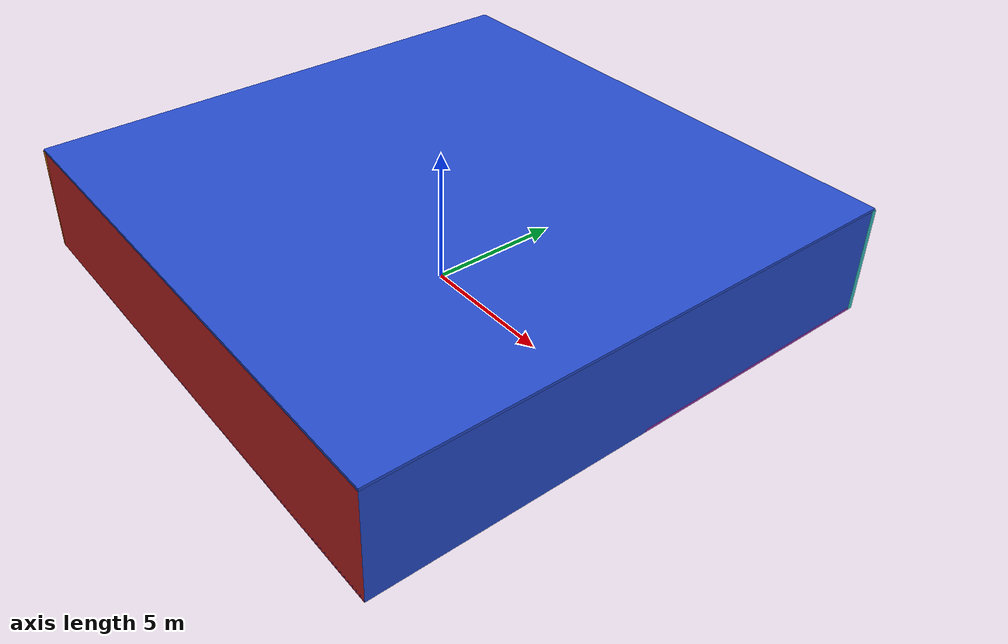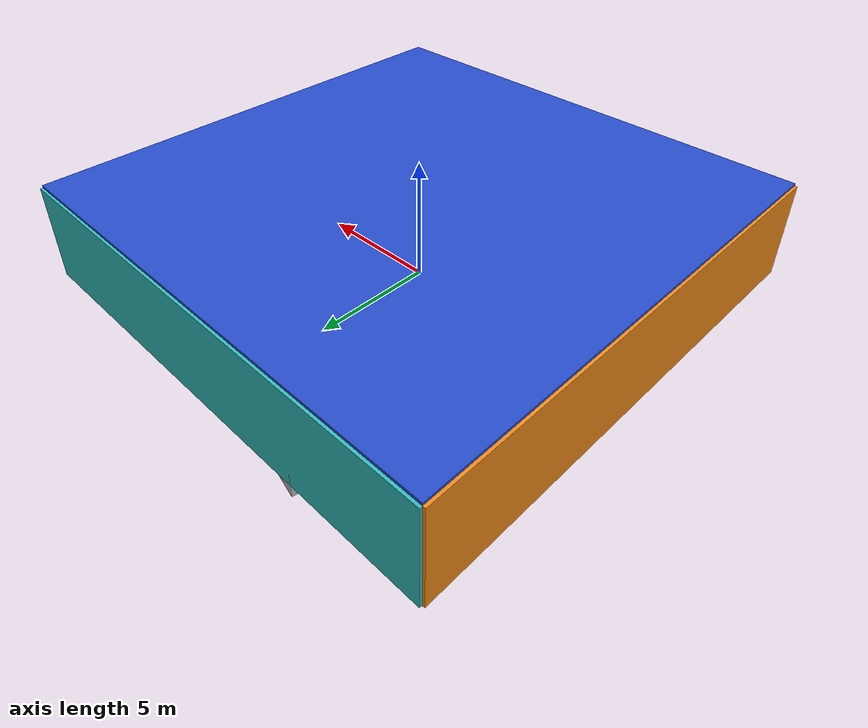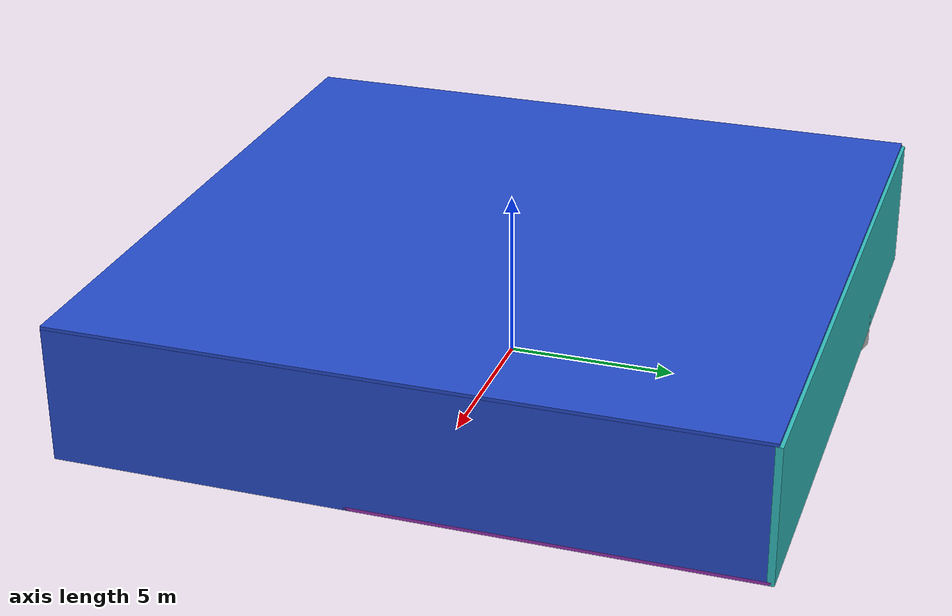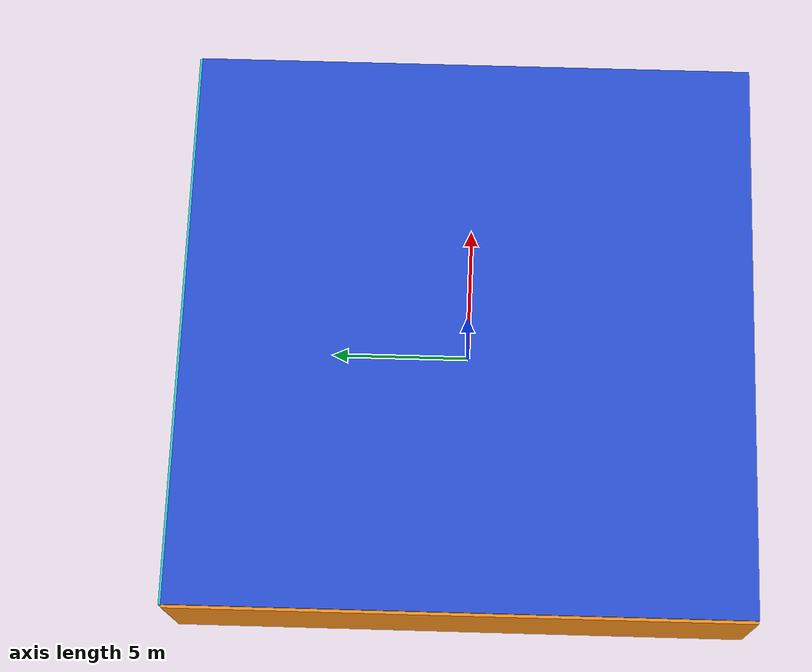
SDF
<sdf version="1.4">
 <world name="default">
  <physics type="ode">
   <max_step_size>0.001</max_step_size>
   <real_time_factor>1</real_time_factor>
   <real_time_update_rate>1000</real_time_update_rate>
   <gravity>0 0 -9.8</gravity>
  </physics>
  <scene><ambient>0.4 0.4 0.4 1</ambient><background>0.7 0.7 0.7 1</background><shadows>1</shadows></scene>
  <model name="Surrounding">
   <static>1</static>
   <link name="Ceiling">
    <collision name="Ceiling_Collision"><geometry><box><size>20 20 0.1</size></box></geometry></collision>
    <visual name="Ceiling_Visual">
     <geometry><box><size>20 20 0.1</size></box></geometry>
     <material>
      <script><uri>file://media/materials/scripts/gazebo.material</uri><name>Gazebo/Blue</name></script>
     </material>
    </visual>
    <pose>0 0 4.05 0 0 0</pose>
   </link>
   <link name="Wall_South">
    <collision name="Wall_South_Collision">
     <geometry><box><size>20 0 4</size></box></geometry>
     <pose>0 0 2 0 -0 0</pose>
    </collision>
    <visual name="Wall_South_Visual">
     <pose>0 0 2 0 -0 0</pose>
     <geometry><box><size>20 0 4</size></box></geometry>
     <material>
      <script><uri>file://media/materials/scripts/gazebo.material</uri><name>Gazebo/RedGlow</name></script>
     </material>
    </visual>
    <velocity_decay><linear>0</linear><angular>0</angular></velocity_decay>
    <pose>0 -10 0 0 -0 0</pose>
   </link>
   <link name="Wall_East">
    <collision name="Wall_21_Collision">
     <geometry><box><size>20 0 4</size></box></geometry>
     <pose>0 0 2 0 -0 0</pose>
    </collision>
    <visual name="Wall_21_Visual">
     <pose>0 0 2 0 -0 0</pose>
     <geometry><box><size>20 0 4</size></box></geometry>
     <material>
      <script><uri>file://media/materials/scripts/gazebo.material</uri><name>Gazebo/BlueGlow</name></script>
     </material>
    </visual>
    <velocity_decay><linear>0</linear><angular>0</angular></velocity_decay>
    <pose>10 0 0 0 -0 1.5708</pose>
   </link>
   <link name="Wall_North">
    <collision name="Wall_22_Collision">
     <geometry><box><size>20 0.2 4</size></box></geometry>
     <pose>0 0 2 0 -0 0</pose>
    </collision>
    <visual name="Wall_22_Visual">
     <pose>0 0 2 0 -0 0</pose>
     <geometry><box><size>20 0.2 4</size></box></geometry>
     <material>
      <script><uri>file://media/materials/scripts/gazebo.material</uri><name>Gazebo/TurquoiseGlow</name></script>
     </material>
    </visual>
    <velocity_decay><linear>0</linear><angular>0</angular></velocity_decay>
    <pose>0 10 0 0 -0 0</pose>
   </link>
   <link name="Wall_West">
    <collision name="Wall_23_Collision">
     <geometry><box><size>20 0.2 4</size></box></geometry>
     <pose>0 0 2 0 -0 0</pose>
    </collision>
    <visual name="Wall_23_Visual">
     <pose>0 0 2 0 -0 0</pose>
     <geometry><box><size>20 0.2 4</size></box></geometry>
     <material>
      <script><uri>file://media/materials/scripts/gazebo.material</uri><name>Gazebo/Orange</name></script>
     </material>
    </visual>
    <velocity_decay><linear>0</linear><angular>0</angular></velocity_decay>
    <pose>-10 0 0 0 0 -1.5708</pose>
   </link>
   <link name="Ground_link">
    <collision name="collision">
     <pose>0 0 .05 0 -0 0</pose>
     <geometry><box><size>20 20 0.1</size></box></geometry>
    </collision>
    <visual name="visual">
     <pose>0 0 .05 0 -0 0</pose>
     <geometry><box><size>20 20 0.1</size></box></geometry>
     <material>
      <script><uri>file://media/materials/scripts/gazebo.material</uri><name>Gazebo/PurpleGlow</name></script>
     </material>
    </visual>
   </link>
   <static>1</static>
  </model>
  <spherical_coordinates>
   <surface_model>EARTH_WGS84</surface_model>
   <latitude_deg>0</latitude_deg>
   <longitude_deg>0</longitude_deg>
   <elevation>0</elevation>
   <heading_deg>0</heading_deg>
  </spherical_coordinates>
  <light name="lightball_0" type="diffuse">
   <diffuse>0.8 0.8 0.8 1</diffuse>
   <specular>0.2 0.2 0.2 1</specular>
   <attenuation>
    <range>100</range>
    <constant>0.7</constant>
    <linear>0.01</linear>
    <quadratic>0.001</quadratic>
   </attenuation>
   <direction>-0.5 0.1 -0.9</direction>
   <pose>0.00108416360729 5.33837562989 1.4817954798 0 0 0</pose>
  </light>
  <light name="lightball_1" type="diffuse">
   <diffuse>0.8 0.8 0.8 1</diffuse>
   <specular>0.2 0.2 0.2 1</specular>
   <attenuation>
    <range>100</range>
    <constant>0.7</constant>
    <linear>0.01</linear>
    <quadratic>0.001</quadratic>
   </attenuation>
   <direction>-0.5 0.1 -0.9</direction>
   <pose>-7.02023443615 -7.51937469339 1.15283251771 0 0 0</pose>
  </light>
  <light name="lightball_2" type="diffuse">
   <diffuse>0.8 0.8 0.8 1</diffuse>
   <specular>0.2 0.2 0.2 1</specular>
   <attenuation>
    <range>100</range>
    <constant>0.7</constant>
    <linear>0.01</linear>
    <quadratic>0.001</quadratic>
   </attenuation>
   <direction>-0.5 0.1 -0.9</direction>
   <pose>1.56987538475 4.19316468534 1.62464667229 0 0 0</pose>
  </light>
  <light name="lightball_3" type="diffuse">
   <diffuse>0.8 0.8 0.8 1</diffuse>
   <specular>0.2 0.2 0.2 1</specular>
   <attenuation>
    <range>100</range>
    <constant>0.7</constant>
    <linear>0.01</linear>
    <quadratic>0.001</quadratic>
   </attenuation>
   <direction>-0.5 0.1 -0.9</direction>
   <pose>8.97052512771 8.64280992248 0.972376872612 0 0 0</pose>
  </light>
  <light name="lightball_4" type="diffuse">
   <diffuse>0.8 0.8 0.8 1</diffuse>
   <specular>0.2 0.2 0.2 1</specular>
   <attenuation>
    <range>100</range>
    <constant>0.7</constant>
    <linear>0.01</linear>
    <quadratic>0.001</quadratic>
   </attenuation>
   <direction>-0.5 0.1 -0.9</direction>
   <pose>9.66598090542 -1.675171001 2.53170653028 0 0 0</pose>
  </light>
  <light name="lightball_5" type="diffuse">
   <diffuse>0.8 0.8 0.8 1</diffuse>
   <specular>0.2 0.2 0.2 1</specular>
   <attenuation>
    <range>100</range>
    <constant>0.7</constant>
    <linear>0.01</linear>
    <quadratic>0.001</quadratic>
   </attenuation>
   <direction>-0.5 0.1 -0.9</direction>
   <pose>9.56244642791 -6.03462267285 2.76108913608 0 0 0</pose>
  </light>
  <light name="lightball_6" type="diffuse">
   <diffuse>0.8 0.8 0.8 1</diffuse>
   <specular>0.2 0.2 0.2 1</specular>
   <attenuation>
    <range>100</range>
    <constant>0.7</constant>
    <linear>0.01</linear>
    <quadratic>0.001</quadratic>
   </attenuation>
   <direction>-0.5 0.1 -0.9</direction>
   <pose>0.42477632469 6.11088668659 0.654899611512 0 0 0</pose>
  </light>
  <light name="lightball_7" type="diffuse">
   <diffuse>0.8 0.8 0.8 1</diffuse>
   <specular>0.2 0.2 0.2 1</specular>
   <attenuation>
    <range>100</range>
    <constant>0.7</constant>
    <linear>0.01</linear>
    <quadratic>0.001</quadratic>
   </attenuation>
   <direction>-0.5 0.1 -0.9</direction>
   <pose>-9.09563721895 2.03905303468 2.57643582065 0 0 0</pose>
  </light>
  <light name="lightball_8" type="diffuse">
   <diffuse>0.8 0.8 0.8 1</diffuse>
   <specular>0.2 0.2 0.2 1</specular>
   <attenuation>
    <range>100</range>
    <constant>0.7</constant>
    <linear>0.01</linear>
    <quadratic>0.001</quadratic>
   </attenuation>
   <direction>-0.5 0.1 -0.9</direction>
   <pose>9.38192390357 5.85209417361 1.81912251336 0 0 0</pose>
  </light>
  <light name="lightball_9" type="diffuse">
   <diffuse>0.8 0.8 0.8 1</diffuse>
   <specular>0.2 0.2 0.2 1</specular>
   <attenuation>
    <range>100</range>
    <constant>0.7</constant>
    <linear>0.01</linear>
    <quadratic>0.001</quadratic>
   </attenuation>
   <direction>-0.5 0.1 -0.9</direction>
   <pose>-8.98353441778 -5.83271115603 3.69010517547 0 0 0</pose>
  </light>
  <light name="lightball_10" type="diffuse">
   <diffuse>0.8 0.8 0.8 1</diffuse>
   <specular>0.2 0.2 0.2 1</specular>
   <attenuation>
    <range>100</range>
    <constant>0.7</constant>
    <linear>0.01</linear>
    <quadratic>0.001</quadratic>
   </attenuation>
   <direction>-0.5 0.1 -0.9</direction>
   <pose>1.67105270572 3.68430599892 1.29299342244 0 0 0</pose>
  </light>
  <light name="lightball_11" type="diffuse">
   <diffuse>0.8 0.8 0.8 1</diffuse>
   <specular>0.2 0.2 0.2 1</specular>
   <attenuation>
    <range>100</range>
    <constant>0.7</constant>
    <linear>0.01</linear>
    <quadratic>0.001</quadratic>
   </attenuation>
   <direction>-0.5 0.1 -0.9</direction>
   <pose>4.16454087285 5.10740277539 2.42741494293 0 0 0</pose>
  </light>
  <light name="lightball_12" type="diffuse">
   <diffuse>0.8 0.8 0.8 1</diffuse>
   <specular>0.2 0.2 0.2 1</specular>
   <attenuation>
    <range>100</range>
    <constant>0.7</constant>
    <linear>0.01</linear>
    <quadratic>0.001</quadratic>
   </attenuation>
   <direction>-0.5 0.1 -0.9</direction>
   <pose>1.5998273416 -7.18652465859 2.65193693868 0 0 0</pose>
  </light>
  <light name="lightball_13" type="diffuse">
   <diffuse>0.8 0.8 0.8 1</diffuse>
   <specular>0.2 0.2 0.2 1</specular>
   <attenuation>
    <range>100</range>
    <constant>0.7</constant>
    <linear>0.01</linear>
    <quadratic>0.001</quadratic>
   </attenuation>
   <direction>-0.5 0.1 -0.9</direction>
   <pose>0.838813150164 4.97529910762 2.18385430559 0 0 0</pose>
  </light>
  <include>
   <uri>model://robocup_3Dsim_goal</uri>
   <pose>-5.04165351593 -1.01635831588 0 0 0 1.17805993432</pose>
  </include>
  <include>
   <uri>model://textured_shapes</uri>
   <pose>-4.60900290528 8.04526323059 0 0 0 2.91912402514</pose>
  </include>
  <include><uri>model://cabinet</uri><pose>-2.10992690781 1.99905442243 0 0 0 1.96827033722</pose></include>
  <include>
   <uri>model://textured_shapes</uri>
   <pose>2.03859118782 -2.03875659092 0 0 0 2.1249830988</pose>
  </include>
  <include>
   <uri>model://robocup_3Dsim_goal</uri>
   <pose>4.86858123688 -4.70365109828 0 0 0 2.7580881738</pose>
  </include>
  <include>
   <uri>model://robocup_3Dsim_goal</uri>
   <pose>6.9696167021 4.51002391188 0 0 0 2.89214328911</pose>
  </include>
 </world>
</sdf>

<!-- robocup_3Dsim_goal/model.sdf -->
<sdf version="1.5">
  <model name="robocup_3d_goal">
    <static>true</static>
    <link name="left_post">
      <pose>0 1.05 0.45 0 0 0</pose>
      <collision name="collision">
        <geometry>
          <cylinder>
            <radius>0.05</radius>
            <length>0.9</length>
          </cylinder>
        </geometry>
      </collision>
      <visual name="visual">
        <geometry>
          <cylinder>
            <radius>0.05</radius>
            <length>0.9</length>
          </cylinder>
        </geometry>
        <material>
          <script>
            <uri>file://media/materials/scripts/gazebo.material</uri>
            <name>Gazebo/ZincYellow</name>
          </script>
        </material>
      </visual>
    </link>
    <link name="left_support_horiz_lower">
      <pose>0.30 1.05 0.01 0 0 0</pose>
      <collision name="collision">
        <geometry>
          <box>
            <size>0.50 0.02 0.02</size>
          </box>
        </geometry>
      </collision>
      <visual name="visual">
        <geometry>
          <box>
            <size>0.50 0.02 0.02</size>
          </box>
        </geometry>
        <material>
          <script>
            <uri>file://media/materials/scripts/gazebo.material</uri>
            <name>Gazebo/White</name>
          </script>
        </material>
      </visual>
    </link>
    <link name="left_support_horiz_upper">
      <pose>0.30 1.05 0.79 0 0 0</pose>
      <collision name="collision">
        <geometry>
          <box>
            <size>0.50 0.02 0.02</size>
          </box>
        </geometry>
      </collision>
      <visual name="visual">
        <geometry>
          <box>
            <size>0.50 0.02 0.02</size>
          </box>
        </geometry>
        <material>
          <script>
            <uri>file://media/materials/scripts/gazebo.material</uri>
            <name>Gazebo/White</name>
          </script>
        </material>
      </visual>
    </link>
    <link name="left_support_vertical">
      <pose>0.56 1.05 0.4 0 1.5708 0</pose>
      <collision name="collision">
        <geometry>
          <box>
            <size>0.80 0.02 0.02</size>
          </box>
        </geometry>
      </collision>
      <visual name="visual">
        <geometry>
          <box>
            <size>0.80 0.02 0.02</size>
          </box>
        </geometry>
        <material>
          <script>
            <uri>file://media/materials/scripts/gazebo.material</uri>
            <name>Gazebo/White</name>
          </script>
        </material>
      </visual>
    </link>
    <link name="right_support_horiz_lower">
      <pose>0.30 -1.05 0.01 0 0 0</pose>
      <collision name="collision">
        <geometry>
          <box>
            <size>0.50 0.02 0.02</size>
          </box>
        </geometry>
      </collision>
      <visual name="visual">
        <geometry>
          <box>
            <size>0.50 0.02 0.02</size>
          </box>
        </geometry>
        <material>
          <script>
            <uri>file://media/materials/scripts/gazebo.material</uri>
            <name>Gazebo/White</name>
          </script>
        </material>
      </visual>
    </link>
    <link name="right_support_horiz_upper">
      <pose>0.30 -1.05 0.79 0 0 0</pose>
      <collision name="collision">
        <geometry>
          <box>
            <size>0.50 0.02 0.02</size>
          </box>
        </geometry>
      </collision>
      <visual name="visual">
        <geometry>
          <box>
            <size>0.50 0.02 0.02</size>
          </box>
        </geometry>
        <material>
          <script>
            <uri>file://media/materials/scripts/gazebo.material</uri>
            <name>Gazebo/White</name>
          </script>
        </material>
      </visual>
    </link>
    <link name="right_support_vertical">
      <pose>0.56 -1.05 0.4 0 1.5708 0</pose>
      <collision name="collision">
        <geometry>
          <box>
            <size>0.80 0.02 0.02</size>
          </box>
        </geometry>
      </collision>
      <visual name="visual">
        <geometry>
          <box>
            <size>0.80 0.02 0.02</size>
          </box>
        </geometry>
        <material>
          <script>
            <uri>file://media/materials/scripts/gazebo.material</uri>
            <name>Gazebo/White</name>
          </script>
        </material>
      </visual>
    </link>
    <link name="center_support_horiz_lower">
      <pose>0.56 0 0.01 0 1.5708 0</pose>
      <collision name="collision">
        <geometry>
          <box>
            <size>0.02 2.08 0.02</size>
          </box>
        </geometry>
      </collision>
      <visual name="visual">
        <geometry>
          <box>
            <size>0.02 2.08 0.02</size>
          </box>
        </geometry>
        <material>
          <script>
            <uri>file://media/materials/scripts/gazebo.material</uri>
            <name>Gazebo/White</name>
          </script>
        </material>
      </visual>
    </link>
    <link name="center_support_horiz_upper">
      <pose>0.56 0 0.79 0 1.5708 0</pose>
      <collision name="collision">
        <geometry>
          <box>
            <size>0.02 2.08 0.02</size>
          </box>
        </geometry>
      </collision>
      <visual name="visual">
        <geometry>
          <box>
            <size>0.02 2.08 0.02</size>
          </box>
        </geometry>
        <material>
          <script>
            <uri>file://media/materials/scripts/gazebo.material</uri>
            <name>Gazebo/White</name>
          </script>
        </material>
      </visual>
    </link>
    <link name="right_post">
      <pose>0 -1.05 0.45 0 0 0</pose>
      <collision name="collision">
        <geometry>
          <cylinder>
            <radius>0.05</radius>
            <length>0.9</length>
          </cylinder>
        </geometry>
      </collision>
      <visual name="visual">
        <geometry>
          <cylinder>
            <radius>0.05</radius>
            <length>0.9</length>
          </cylinder>
        </geometry>
        <material>
          <script>
            <uri>file://media/materials/scripts/gazebo.material</uri>
            <name>Gazebo/ZincYellow</name>
          </script>
        </material>
      </visual>
    </link>
    <link name="crossbar">
      <pose>0 0 0.85 1.57 1.57 0</pose>
      <collision name="collision">
        <geometry>
          <cylinder>
            <radius>0.05</radius>
            <length>2.0</length>
          </cylinder>
        </geometry>
      </collision>
      <visual name="visual">
        <geometry>
          <cylinder>
            <radius>0.05</radius>
            <length>2.0</length>
          </cylinder>
        </geometry>
        <material>
          <script>
            <uri>file://media/materials/scripts/gazebo.material</uri>
            <name>Gazebo/ZincYellow</name>
          </script>
        </material>
      </visual>
    </link>
    <link name="center_net">
      <pose>0.56 0 0.40 0 0 0</pose>
      <collision name="collision">
        <geometry>
          <box>
            <size>0.01 2.1 0.80</size>
          </box>
        </geometry>
      </collision>
      <visual name="visual">
        <geometry>
          <box>
            <size>0.01 2.1 0.80</size>
          </box>
        </geometry>
        <material>
          <script>
            <uri>model://../model_source/models/robocup09_spl_field/materials/scripts/</uri>
            <uri>model://../model_source/models/robocup09_spl_field/materials/textures/</uri>
            <name>RoboCup/Net</name>
          </script>
        </material>
      </visual>
    </link>
    <link name="left_net">
      <pose>0.30 1.05 0.40 0 0 0</pose>
      <collision name="collision">
        <geometry>
          <box>
            <size>0.50 0.01 0.76</size>
          </box>
        </geometry>
      </collision>
      <visual name="visual">
        <geometry>
          <box>
            <size>0.50 0.01 0.76</size>
          </box>
        </geometry>
        <material>
          <script>
            <uri>model://../model_source/models/robocup09_spl_field/materials/scripts/</uri>
            <uri>model://../model_source/models/robocup09_spl_field/materials/textures/</uri>
            <name>RoboCup/Net</name>
          </script>
        </material>
      </visual>
    </link>
    <link name="right_net">
      <pose>0.30 -1.05 0.40 0 0 0</pose>
      <collision name="collision">
        <geometry>
          <box>
            <size>0.50 0.01 0.76</size>
          </box>
        </geometry>
      </collision>
      <visual name="visual">
        <geometry>
          <box>
            <size>0.50 0.01 0.76</size>
          </box>
        </geometry>
        <material>
          <script>
            <uri>model://../model_source/models/robocup09_spl_field/materials/scripts/</uri>
            <uri>model://../model_source/models/robocup09_spl_field/materials/textures/</uri>
            <name>RoboCup/Net</name>
          </script>
        </material>
      </visual>
    </link>
  </model>
</sdf>

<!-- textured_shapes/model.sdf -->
<sdf version="1.6">
  <model name="textured_shapes">
    <pose>0 0 0.5 0 0 0</pose>
    <link name="box">
      <pose>0 -1.5 0 0 0 0</pose>
      <collision name="collision">
        <geometry>
          <box>
            <size>1 1 1</size>
          </box>
        </geometry>
      </collision>
      <visual name="visual">
        <geometry>
          <box>
            <size>1 1 1</size>
          </box>
        </geometry>
        <material>
          <script>
            <uri>model://../model_source/models/textured_shapes/materials/scripts</uri>
            <uri>model://../model_source/models/textured_shapes/materials/textures</uri>
            <name>TexturedShape/Squares</name>
          </script>
        </material>
      </visual>
    </link>
    <link name="sphere">
      <collision name="collision">
        <geometry>
          <sphere>
            <radius>0.5</radius>
          </sphere>
        </geometry>
      </collision>
      <visual name="visual">
        <geometry>
          <sphere>
            <radius>0.5</radius>
          </sphere>
        </geometry>
        <material>
          <script>
            <uri>model://../model_source/models/textured_shapes/materials/scripts</uri>
            <uri>model://../model_source/models/textured_shapes/materials/textures</uri>
            <name>TexturedShape/Squares</name>
          </script>
        </material>
      </visual>
    </link>
    <link name="cylinder">
      <pose>0 1.5 0 0 0 0</pose>
      <collision name="collision">
        <geometry>
          <cylinder>
            <radius>0.5</radius>
            <length>1</length>
          </cylinder>
        </geometry>
      </collision>
      <visual name="visual">
        <geometry>
          <cylinder>
            <radius>0.5</radius>
            <length>1</length>
          </cylinder>
        </geometry>
        <material>
          <script>
            <uri>model://../model_source/models/textured_shapes/materials/scripts</uri>
            <uri>model://../model_source/models/textured_shapes/materials/textures</uri>
            <name>TexturedShape/Squares</name>
          </script>
        </material>
      </visual>
    </link>
  </model>
</sdf>

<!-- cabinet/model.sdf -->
<sdf version="1.5">
  <model name="cabinet">
    <static>true</static>
    <link name="cabinet_bottom_plate">
      <inertial>
        <pose>0 0 -1 0 0 0</pose>
        <inertia>
          <ixx>2.050000</ixx>
          <ixy>0</ixy>
          <ixz>0</ixz>
          <iyy>2.050000</iyy>
          <iyz>0</iyz>
          <izz>2.050000</izz>
        </inertia>
        <mass>25.000000</mass>
      </inertial>
      <collision name="cabinet_bottom_plate_geom">
        <pose>0 0 0.010000 0 0 0</pose>
        <geometry>
          <box>
            <size>0.450000 0.450000 0.020000</size>
          </box>
        </geometry>
      </collision>
      <visual name="cabinet_bottom_plate_geom_visual">
        <pose>0 0 0.010000 0 0 0</pose>
        <geometry>
          <box>
            <size>0.450000 0.450000 0.020000</size>
          </box>
        </geometry>
        <material>
          <script>
            <uri>model://media/materials/scripts/gazebo.material</uri>
            <name>Gazebo/Wood</name>
          </script>
        </material>
      </visual>
      <collision name="cabinet_bottom_plate_geom_cabinet_back_plate">
        <pose>0.235000 0 0.510000 0 0 0</pose>
        <geometry>
          <box>
            <size>0.020000 0.450000 1.020000</size>
          </box>
        </geometry>
      </collision>
      <visual name="cabinet_bottom_plate_geom_cabinet_back_plate_visual">
        <pose>0.235000 0 0.510000 0 0 0</pose>
        <geometry>
          <box>
            <size>0.020000 0.450000 1.020000</size>
          </box>
        </geometry>
        <material>
          <script>
            <uri>model://media/materials/scripts/gazebo.material</uri>
            <name>Gazebo/Wood</name>
          </script>
        </material>
      </visual>
      <collision name="cabinet_bottom_plate_geom_cabinet_left_plate">
        <pose>0 0.235000 0.510000 0 0 0</pose>
        <geometry>
          <box>
            <size>0.450000 0.020000 1.020000</size>
          </box>
        </geometry>
      </collision>
      <visual name="cabinet_bottom_plate_geom_cabinet_left_plate_visual">
        <pose>0 0.235000 0.510000 0 0 0</pose>
        <geometry>
          <box>
            <size>0.450000 0.020000 1.020000</size>
          </box>
        </geometry>
        <material>
          <script>
            <uri>model://media/materials/scripts/gazebo.material</uri>
            <name>Gazebo/Wood</name>
          </script>
        </material>
      </visual>
      <collision name="cabinet_bottom_plate_geom_cabinet_middle_plate">
        <pose>0 0 0.510000 0 0 0</pose>
        <geometry>
          <box>
            <size>0.450000 0.450000 0.020000</size>
          </box>
        </geometry>
      </collision>
      <visual name="cabinet_bottom_plate_geom_cabinet_middle_plate_visual">
        <pose>0 0 0.510000 0 0 0</pose>
        <geometry>
          <box>
            <size>0.450000 0.450000 0.020000</size>
          </box>
        </geometry>
        <material>
          <script>
            <uri>model://media/materials/scripts/gazebo.material</uri>
            <name>Gazebo/Wood</name>
          </script>
        </material>
      </visual>
      <collision name="cabinet_bottom_plate_geom_cabinet_right_plate">
        <pose>0 -0.235000 0.510000 0 0 0</pose>
        <geometry>
          <box>
            <size>0.450000 0.020000 1.020000</size>
          </box>
        </geometry>
      </collision>
      <visual name="cabinet_bottom_plate_geom_cabinet_right_plate_visual">
        <pose>0 -0.235000 0.510000 0 0 0</pose>
        <geometry>
          <box>
            <size>0.450000 0.020000 1.020000</size>
          </box>
        </geometry>
        <material>
          <script>
            <uri>model://media/materials/scripts/gazebo.material</uri>
            <name>Gazebo/Wood</name>
          </script>
        </material>
      </visual>
      <collision name="cabinet_bottom_plate_geom_cabinet_top_plate">
        <pose>0 0 1.010000 0 0 0</pose>
        <geometry>
          <box>
            <size>0.450000 0.450000 0.020000</size>
          </box>
        </geometry>
      </collision>
      <visual name="cabinet_bottom_plate_geom_cabinet_top_plate_visual">
        <pose>0 0 1.010000 0 0 0</pose>
        <geometry>
          <box>
            <size>0.450000 0.450000 0.020000</size>
          </box>
        </geometry>
        <material>
          <script>
            <uri>model://media/materials/scripts/gazebo.material</uri>
            <name>Gazebo/Wood</name>
          </script>
        </material>
      </visual>
    </link>
  </model>
</sdf>
